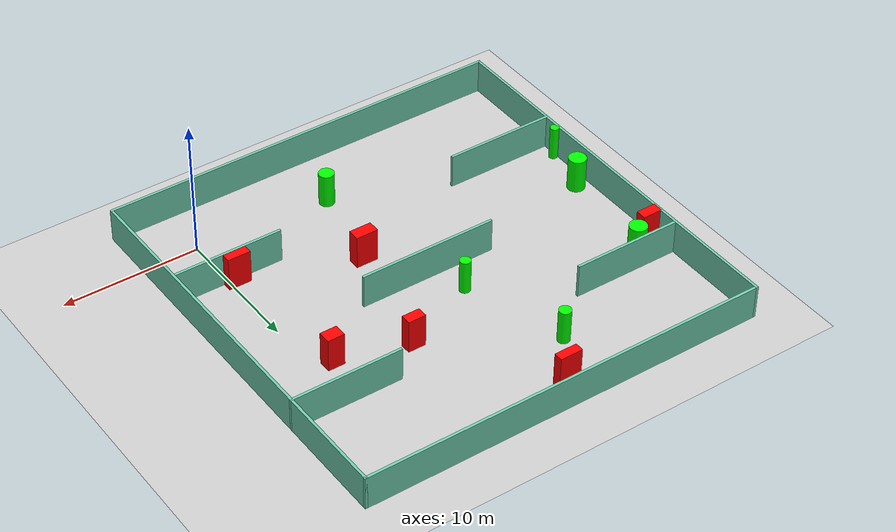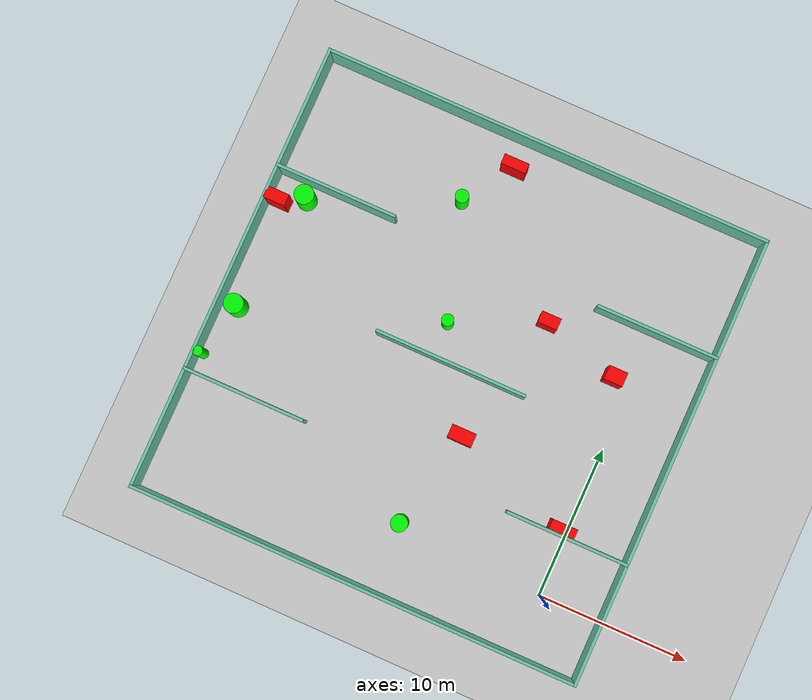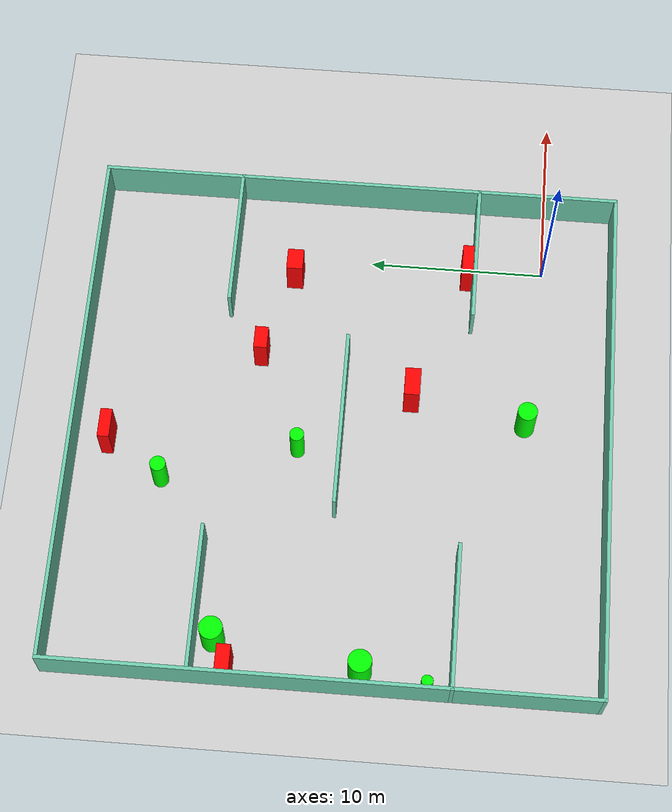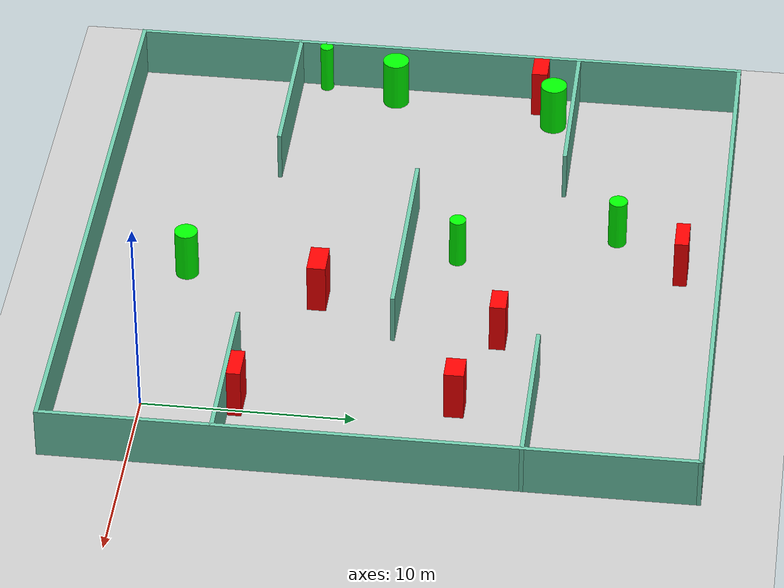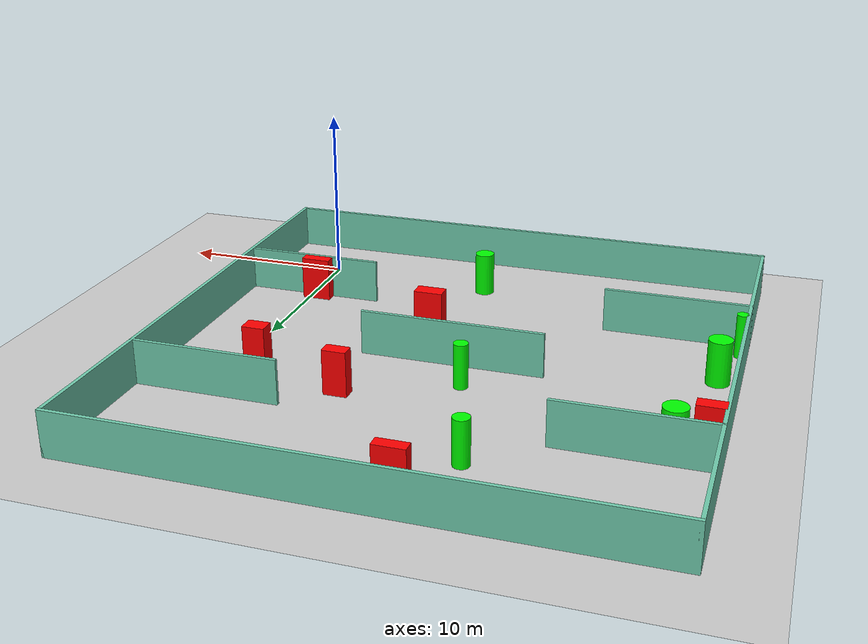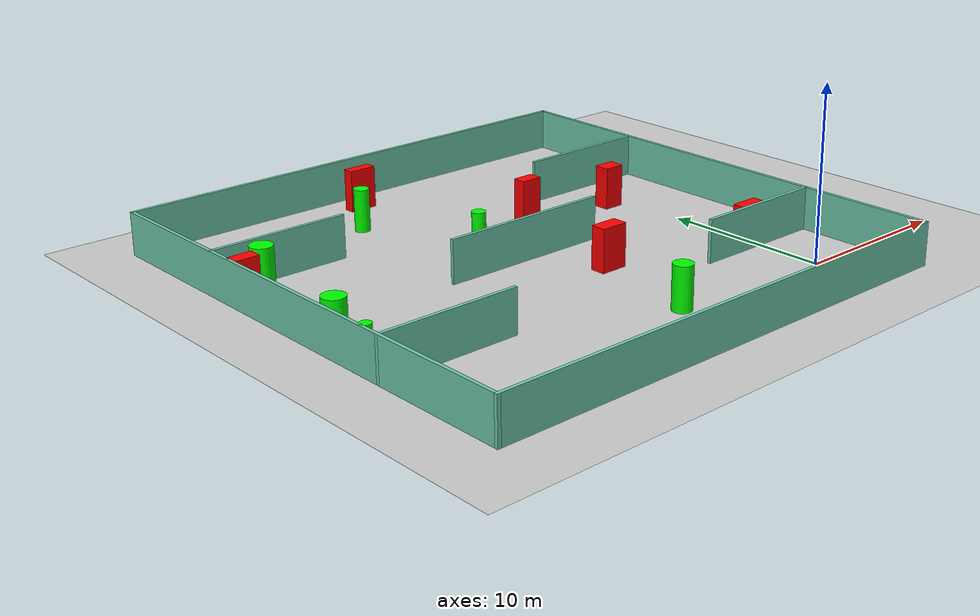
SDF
<sdf version="1.7">
 <world name="default">
  <light name="sun" type="directional">
   <pose>0 0 10 0 -0 0</pose>
   <diffuse>0.8 0.8 0.8 1</diffuse>
   <specular>0.2 0.2 0.2 1</specular>
   <attenuation>
    <range>1000</range>
    <constant>0.9</constant>
    <linear>0.01</linear>
    <quadratic>0.001</quadratic>
   </attenuation>
   <direction>-0.5 0.1 -0.9</direction>
   <spot><inner_angle>0</inner_angle><outer_angle>0</outer_angle><falloff>0</falloff></spot>
  </light>
  <model name="ground_plane">
   <static>1</static>
   <link name="link">
    <collision name="collision">
     <geometry><plane><normal>0 0 1</normal><size>100 100</size></plane></geometry>
     <surface>
      <contact><collide_bitmask>65535</collide_bitmask></contact>
      <friction><ode><mu>100</mu><mu2>50</mu2></ode></friction>
     </surface>
    </collision>
    <visual name="visual">
     <cast_shadows>0</cast_shadows>
     <geometry><plane><normal>0 0 1</normal><size>100 100</size></plane></geometry>
     <material>
      <script><uri>file://media/materials/scripts/gazebo.material</uri><name>Gazebo/Grey</name></script>
     </material>
    </visual>
   </link>
  </model>
  <gravity>0 0 -9.8</gravity>
  <magnetic_field>6e-06 2.3e-05 -4.2e-05</magnetic_field>
  <atmosphere type="adiabatic"/>
  <physics type="ode">
   <max_step_size>0.001</max_step_size>
   <real_time_factor>1</real_time_factor>
   <real_time_update_rate>1000</real_time_update_rate>
  </physics>
  <scene><ambient>0.4 0.4 0.4 1</ambient><background>0.7 0.7 0.7 1</background><shadows>1</shadows></scene>
  <spherical_coordinates>
   <surface_model>EARTH_WGS84</surface_model>
   <latitude_deg>0</latitude_deg>
   <longitude_deg>0</longitude_deg>
   <elevation>0</elevation>
   <heading_deg>0</heading_deg>
  </spherical_coordinates>
  <model name="my_base_walls">
   <link name="Wall_10">
    <collision name="Wall_10_Collision">
     <geometry><box><size>8.2 0.2 2.5</size></box></geometry>
     <pose>0 0 1.25 0 -0 0</pose>
    </collision>
    <visual name="Wall_10_Visual">
     <pose>0 0 1.25 0 -0 0</pose>
     <geometry><box><size>8.2 0.2 2.5</size></box></geometry>
     <material>
      <script><uri>file://media/materials/scripts/gazebo.material</uri><name>Gazebo/Grey</name></script>
      <ambient>0.435294 0.796078 0.67451 1</ambient>
     </material>
     <meta><layer>0</layer></meta>
    </visual>
    <pose>-11 -7 0 0 -0 0</pose>
   </link>
   <link name="Wall_12">
    <collision name="Wall_12_Collision">
     <geometry><box><size>8.2 0.2 2.5</size></box></geometry>
     <pose>0 0 1.25 0 -0 0</pose>
    </collision>
    <visual name="Wall_12_Visual">
     <pose>0 0 1.25 0 -0 0</pose>
     <geometry><box><size>8.2 0.2 2.5</size></box></geometry>
     <material>
      <script><uri>file://media/materials/scripts/gazebo.material</uri><name>Gazebo/Grey</name></script>
      <ambient>0.435294 0.796078 0.67451 1</ambient>
     </material>
     <meta><layer>0</layer></meta>
    </visual>
    <pose>-11 7 0 0 -0 0</pose>
   </link>
   <link name="Wall_14">
    <collision name="Wall_14_Collision">
     <geometry><box><size>8.2 0.2 2.5</size></box></geometry>
     <pose>0 0 1.25 0 -0 0</pose>
    </collision>
    <visual name="Wall_14_Visual">
     <pose>0 0 1.25 0 -0 0</pose>
     <geometry><box><size>8.2 0.2 2.5</size></box></geometry>
     <material>
      <script><uri>file://media/materials/scripts/gazebo.material</uri><name>Gazebo/Grey</name></script>
      <ambient>0.435294 0.796078 0.67451 1</ambient>
     </material>
     <meta><layer>0</layer></meta>
    </visual>
    <pose>11 7 0 0 -0 3.14159</pose>
   </link>
   <link name="Wall_16">
    <collision name="Wall_16_Collision">
     <geometry><box><size>10.2 0.2 2.5</size></box></geometry>
     <pose>0 0 1.25 0 -0 0</pose>
    </collision>
    <visual name="Wall_16_Visual">
     <pose>0 0 1.25 0 -0 0</pose>
     <geometry><box><size>10.2 0.2 2.5</size></box></geometry>
     <material>
      <script><uri>file://media/materials/scripts/gazebo.material</uri><name>Gazebo/Grey</name></script>
      <ambient>0.435294 0.796078 0.67451 1</ambient>
     </material>
     <meta><layer>0</layer></meta>
    </visual>
    <pose>0 0 0 0 -0 3.14159</pose>
   </link>
   <link name="Wall_2">
    <collision name="Wall_2_Collision">
     <geometry><box><size>30.2 0.2 2.5</size></box></geometry>
     <pose>0 0 1.25 0 -0 0</pose>
    </collision>
    <visual name="Wall_2_Visual">
     <pose>0 0 1.25 0 -0 0</pose>
     <geometry><box><size>30.2 0.2 2.5</size></box></geometry>
     <material>
      <script><uri>file://media/materials/scripts/gazebo.material</uri><name>Gazebo/Grey</name></script>
      <ambient>0.435294 0.796078 0.67451 1</ambient>
     </material>
     <meta><layer>0</layer></meta>
    </visual>
    <pose>0 -15 0 0 -0 3.14159</pose>
   </link>
   <link name="Wall_3">
    <collision name="Wall_3_Collision">
     <geometry><box><size>30.2 0.2 2.5</size></box></geometry>
     <pose>0 0 1.25 0 -0 0</pose>
    </collision>
    <visual name="Wall_3_Visual">
     <pose>0 0 1.25 0 -0 0</pose>
     <geometry><box><size>30.2 0.2 2.5</size></box></geometry>
     <material>
      <script><uri>file://media/materials/scripts/gazebo.material</uri><name>Gazebo/Grey</name></script>
      <ambient>0.435294 0.796078 0.67451 1</ambient>
     </material>
     <meta><layer>0</layer></meta>
    </visual>
    <pose>-15 0 0 0 -0 1.5708</pose>
   </link>
   <link name="Wall_4">
    <collision name="Wall_4_Collision">
     <geometry><box><size>30.2 0.2 2.5</size></box></geometry>
     <pose>0 0 1.25 0 -0 0</pose>
    </collision>
    <visual name="Wall_4_Visual">
     <pose>0 0 1.25 0 -0 0</pose>
     <geometry><box><size>30.2 0.2 2.5</size></box></geometry>
     <material>
      <script><uri>file://media/materials/scripts/gazebo.material</uri><name>Gazebo/Grey</name></script>
      <ambient>0.435294 0.796078 0.67451 1</ambient>
     </material>
     <meta><layer>0</layer></meta>
    </visual>
    <pose>0 15 0 0 -0 0</pose>
   </link>
   <link name="Wall_6">
    <collision name="Wall_6_Collision">
     <geometry><box><size>30.2 0.2 2.5</size></box></geometry>
     <pose>0 0 1.25 0 -0 0</pose>
    </collision>
    <visual name="Wall_6_Visual">
     <pose>0 0 1.25 0 -0 0</pose>
     <geometry><box><size>30.2 0.2 2.5</size></box></geometry>
     <material>
      <script><uri>file://media/materials/scripts/gazebo.material</uri><name>Gazebo/Grey</name></script>
      <ambient>0.435294 0.796078 0.67451 1</ambient>
     </material>
     <meta><layer>0</layer></meta>
    </visual>
    <pose>15 0 0 0 -0 1.5708</pose>
   </link>
   <link name="Wall_8">
    <collision name="Wall_8_Collision">
     <geometry><box><size>8.2 0.2 2.5</size></box></geometry>
     <pose>0 0 1.25 0 -0 0</pose>
    </collision>
    <visual name="Wall_8_Visual">
     <pose>0 0 1.25 0 -0 0</pose>
     <geometry><box><size>8.2 0.2 2.5</size></box></geometry>
     <material>
      <script><uri>file://media/materials/scripts/gazebo.material</uri><name>Gazebo/Grey</name></script>
      <ambient>0.435294 0.796078 0.67451 1</ambient>
     </material>
     <meta><layer>0</layer></meta>
    </visual>
    <pose>11 -7 0 0 -0 3.14159</pose>
   </link>
   <static>1</static>
   <pose>-11 11 0 0 -0 0</pose>
  </model>
  <model name="cylinder1">
   <static>1</static>
   <link name="link">
    <inertial>
     <mass>1</mass>
     <inertia><ixx>0.5</ixx><ixy>0</ixy><ixz>0</ixz><iyy>0.5</iyy><iyz>0</iyz><izz>1</izz></inertia>
    </inertial>
    <collision name="collision">
     <geometry><cylinder><radius>0.6446943667345052</radius><length>2.5</length></cylinder></geometry>
    </collision>
    <visual name="visual">
     <geometry><cylinder><radius>0.6446943667345052</radius><length>2.5</length></cylinder></geometry>
     <material>
      <ambient>0 1 0 1</ambient>
      <diffuse>0 1 0 1</diffuse>
      <specular>0.1 0.1 0.1 1</specular>
      <emissive>0 0 0 0</emissive>
     </material>
    </visual>
   </link>
   <pose>-24.8878509907974 8.92199407502613 1.25 0 0 0</pose>
  </model>
  <model name="cylinder2">
   <static>1</static>
   <link name="link">
    <inertial>
     <mass>1</mass>
     <inertia><ixx>0.5</ixx><ixy>0</ixy><ixz>0</ixz><iyy>0.5</iyy><iyz>0</iyz><izz>1</izz></inertia>
    </inertial>
    <collision name="collision">
     <geometry><cylinder><radius>0.40045214926120615</radius><length>2.5</length></cylinder></geometry>
    </collision>
    <visual name="visual">
     <geometry><cylinder><radius>0.40045214926120615</radius><length>2.5</length></cylinder></geometry>
     <material>
      <ambient>0 1 0 1</ambient>
      <diffuse>0 1 0 1</diffuse>
      <specular>0.1 0.1 0.1 1</specular>
      <emissive>0 0 0 0</emissive>
     </material>
    </visual>
   </link>
   <pose>-12.271870020407087 13.381638326151009 1.25 0 0 0</pose>
  </model>
  <model name="cylinder3">
   <static>1</static>
   <link name="link">
    <inertial>
     <mass>1</mass>
     <inertia><ixx>0.5</ixx><ixy>0</ixy><ixz>0</ixz><iyy>0.5</iyy><iyz>0</iyz><izz>1</izz></inertia>
    </inertial>
    <collision name="collision">
     <geometry><cylinder><radius>0.554668633863233</radius><length>2.5</length></cylinder></geometry>
    </collision>
    <visual name="visual">
     <geometry><cylinder><radius>0.554668633863233</radius><length>2.5</length></cylinder></geometry>
     <material>
      <ambient>0 1 0 1</ambient>
      <diffuse>0 1 0 1</diffuse>
      <specular>0.1 0.1 0.1 1</specular>
      <emissive>0 0 0 0</emissive>
     </material>
    </visual>
   </link>
   <pose>-9.88699622671627 0.6529012282864857 1.25 0 0 0</pose>
  </model>
  <model name="cylinder4">
   <static>1</static>
   <link name="link">
    <inertial>
     <mass>1</mass>
     <inertia><ixx>0.5</ixx><ixy>0</ixy><ixz>0</ixz><iyy>0.5</iyy><iyz>0</iyz><izz>1</izz></inertia>
    </inertial>
    <collision name="collision">
     <geometry><cylinder><radius>0.32357218604584137</radius><length>2.5</length></cylinder></geometry>
    </collision>
    <visual name="visual">
     <geometry><cylinder><radius>0.32357218604584137</radius><length>2.5</length></cylinder></geometry>
     <material>
      <ambient>0 1 0 1</ambient>
      <diffuse>0 1 0 1</diffuse>
      <specular>0.1 0.1 0.1 1</specular>
      <emissive>0 0 0 0</emissive>
     </material>
    </visual>
   </link>
   <pose>-25.683536489938525 5.326596349711478 1.25 0 0 0</pose>
  </model>
  <model name="cylinder5">
   <static>1</static>
   <link name="link">
    <inertial>
     <mass>1</mass>
     <inertia><ixx>0.5</ixx><ixy>0</ixy><ixz>0</ixz><iyy>0.5</iyy><iyz>0</iyz><izz>1</izz></inertia>
    </inertial>
    <collision name="collision">
     <geometry><cylinder><radius>0.6464740220974586</radius><length>2.5</length></cylinder></geometry>
    </collision>
    <visual name="visual">
     <geometry><cylinder><radius>0.6464740220974586</radius><length>2.5</length></cylinder></geometry>
     <material>
      <ambient>0 1 0 1</ambient>
      <diffuse>0 1 0 1</diffuse>
      <specular>0.1 0.1 0.1 1</specular>
      <emissive>0 0 0 0</emissive>
     </material>
    </visual>
   </link>
   <pose>-23.69935954804461 16.95151246038571 1.25 0 0 0</pose>
  </model>
  <model name="cylinder6">
   <static>1</static>
   <link name="link">
    <inertial>
     <mass>1</mass>
     <inertia><ixx>0.5</ixx><ixy>0</ixy><ixz>0</ixz><iyy>0.5</iyy><iyz>0</iyz><izz>1</izz></inertia>
    </inertial>
    <collision name="collision">
     <geometry><cylinder><radius>0.4424206576057244</radius><length>2.5</length></cylinder></geometry>
    </collision>
    <visual name="visual">
     <geometry><cylinder><radius>0.4424206576057244</radius><length>2.5</length></cylinder></geometry>
     <material>
      <ambient>0 1 0 1</ambient>
      <diffuse>0 1 0 1</diffuse>
      <specular>0.1 0.1 0.1 1</specular>
      <emissive>0 0 0 0</emissive>
     </material>
    </visual>
   </link>
   <pose>-14.612121648835537 20.870416449230373 1.25 0 0 0</pose>
  </model>
  <model name="box1">
   <static>1</static>
   <link name="link">
    <inertial>
     <mass>1</mass>
     <inertia><ixx>0.083</ixx><ixy>0</ixy><ixz>0</ixz><iyy>0.083</iyy><iyz>0</iyz><izz>0.083</izz></inertia>
    </inertial>
    <collision name="collision">
     <geometry><box><size>1.6846686750221795 0.6539575999845089 2.5</size></box></geometry>
    </collision>
    <visual name="visual">
     <geometry><box><size>1.6846686750221795 0.6539575999845089 2.5</size></box></geometry>
     <material>
      <ambient>1 0 0 1</ambient>
      <diffuse>1 0 0 1</diffuse>
      <specular>0.1 0.1 0.1 1</specular>
      <emissive>0 0 0 0</emissive>
     </material>
    </visual>
    <sensor name="my_contact" type="contact">
     <contact><collision>box_collision</collision><topic>__default_topic__</topic></contact>
    </sensor>
   </link>
   <pose>-0.47539125433265994 4.43476157182536 1.25 0 0 0</pose>
  </model>
  <model name="box2">
   <static>1</static>
   <link name="link">
    <inertial>
     <mass>1</mass>
     <inertia><ixx>0.083</ixx><ixy>0</ixy><ixz>0</ixz><iyy>0.083</iyy><iyz>0</iyz><izz>0.083</izz></inertia>
    </inertial>
    <collision name="collision">
     <geometry><box><size>1.2451911521520995 0.9298929378576374 2.5</size></box></geometry>
    </collision>
    <visual name="visual">
     <geometry><box><size>1.2451911521520995 0.9298929378576374 2.5</size></box></geometry>
     <material>
      <ambient>1 0 0 1</ambient>
      <diffuse>1 0 0 1</diffuse>
      <specular>0.1 0.1 0.1 1</specular>
      <emissive>0 0 0 0</emissive>
     </material>
    </visual>
    <sensor name="my_contact" type="contact">
     <contact><collision>box_collision</collision><topic>__default_topic__</topic></contact>
    </sensor>
   </link>
   <pose>-1.2942025382699285 14.438050942779945 1.25 0 0 0</pose>
  </model>
  <model name="box3">
   <static>1</static>
   <link name="link">
    <inertial>
     <mass>1</mass>
     <inertia><ixx>0.083</ixx><ixy>0</ixy><ixz>0</ixz><iyy>0.083</iyy><iyz>0</iyz><izz>0.083</izz></inertia>
    </inertial>
    <collision name="collision">
     <geometry><box><size>1.4608757339407963 0.7762138384022905 2.5</size></box></geometry>
    </collision>
    <visual name="visual">
     <geometry><box><size>1.4608757339407963 0.7762138384022905 2.5</size></box></geometry>
     <material>
      <ambient>1 0 0 1</ambient>
      <diffuse>1 0 0 1</diffuse>
      <specular>0.1 0.1 0.1 1</specular>
      <emissive>0 0 0 0</emissive>
     </material>
    </visual>
    <sensor name="my_contact" type="contact">
     <contact><collision>box_collision</collision><topic>__default_topic__</topic></contact>
    </sensor>
   </link>
   <pose>-25.25621455048373 16.160415807138026 1.25 0 0 0</pose>
  </model>
  <model name="box4">
   <static>1</static>
   <link name="link">
    <inertial>
     <mass>1</mass>
     <inertia><ixx>0.083</ixx><ixy>0</ixy><ixz>0</ixz><iyy>0.083</iyy><iyz>0</iyz><izz>0.083</izz></inertia>
    </inertial>
    <collision name="collision">
     <geometry><box><size>1.3042181306676375 0.7639985246933371 2.5</size></box></geometry>
    </collision>
    <visual name="visual">
     <geometry><box><size>1.3042181306676375 0.7639985246933371 2.5</size></box></geometry>
     <material>
      <ambient>1 0 0 1</ambient>
      <diffuse>1 0 0 1</diffuse>
      <specular>0.1 0.1 0.1 1</specular>
      <emissive>0 0 0 0</emissive>
     </material>
    </visual>
    <sensor name="my_contact" type="contact">
     <contact><collision>box_collision</collision><topic>__default_topic__</topic></contact>
    </sensor>
   </link>
   <pose>-6.454133846310349 15.932805052187668 1.25 0 0 0</pose>
  </model>
  <model name="box5">
   <static>1</static>
   <link name="link">
    <inertial>
     <mass>1</mass>
     <inertia><ixx>0.083</ixx><ixy>0</ixy><ixz>0</ixz><iyy>0.083</iyy><iyz>0</iyz><izz>0.083</izz></inertia>
    </inertial>
    <collision name="collision">
     <geometry><box><size>1.6316481783248666 0.8948068247157119 2.5</size></box></geometry>
    </collision>
    <visual name="visual">
     <geometry><box><size>1.6316481783248666 0.8948068247157119 2.5</size></box></geometry>
     <material>
      <ambient>1 0 0 1</ambient>
      <diffuse>1 0 0 1</diffuse>
      <specular>0.1 0.1 0.1 1</specular>
      <emissive>0 0 0 0</emissive>
     </material>
    </visual>
    <sensor name="my_contact" type="contact">
     <contact><collision>box_collision</collision><topic>__default_topic__</topic></contact>
    </sensor>
   </link>
   <pose>-8.543166885976447 7.164900624015019 1.25 0 0 0</pose>
  </model>
  <model name="box6">
   <static>1</static>
   <link name="link">
    <inertial>
     <mass>1</mass>
     <inertia><ixx>0.083</ixx><ixy>0</ixy><ixz>0</ixz><iyy>0.083</iyy><iyz>0</iyz><izz>0.083</izz></inertia>
    </inertial>
    <collision name="collision">
     <geometry><box><size>1.6678702830871166 0.6585154614635955 2.5</size></box></geometry>
    </collision>
    <visual name="visual">
     <geometry><box><size>1.6678702830871166 0.6585154614635955 2.5</size></box></geometry>
     <material>
      <ambient>1 0 0 1</ambient>
      <diffuse>1 0 0 1</diffuse>
      <specular>0.1 0.1 0.1 1</specular>
      <emissive>0 0 0 0</emissive>
     </material>
    </visual>
    <sensor name="my_contact" type="contact">
     <contact><collision>box_collision</collision><topic>__default_topic__</topic></contact>
    </sensor>
   </link>
   <pose>-12.398603846680274 24.09472480037159 1.25 0 0 0</pose>
  </model>
 </world>
</sdf>
